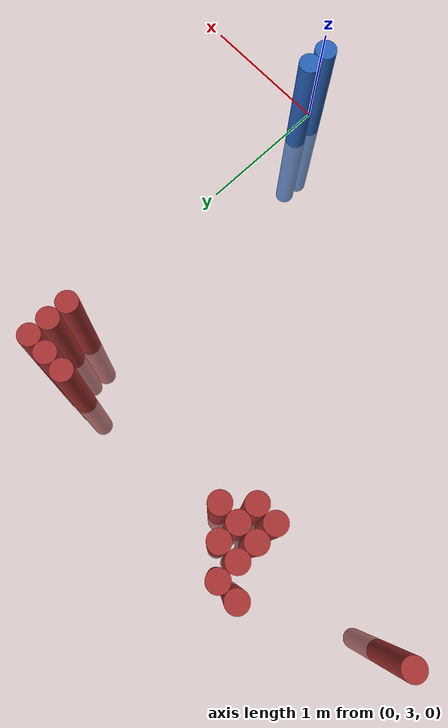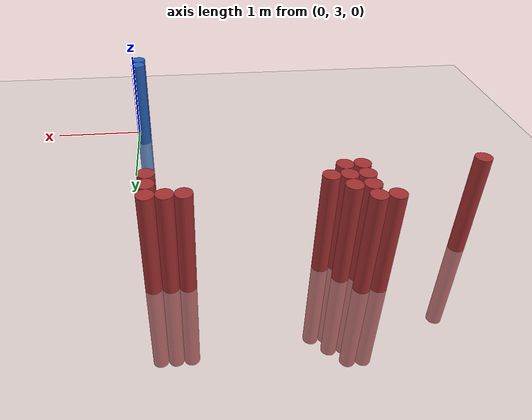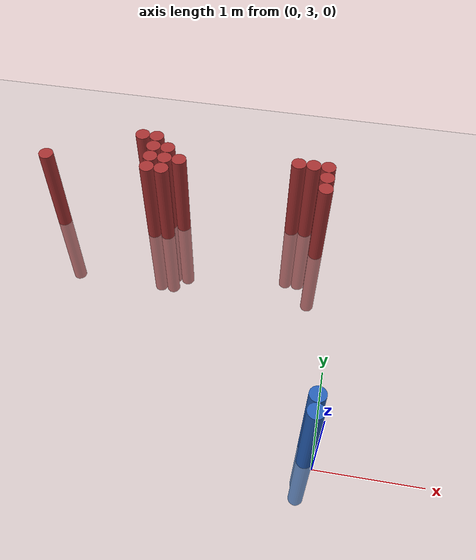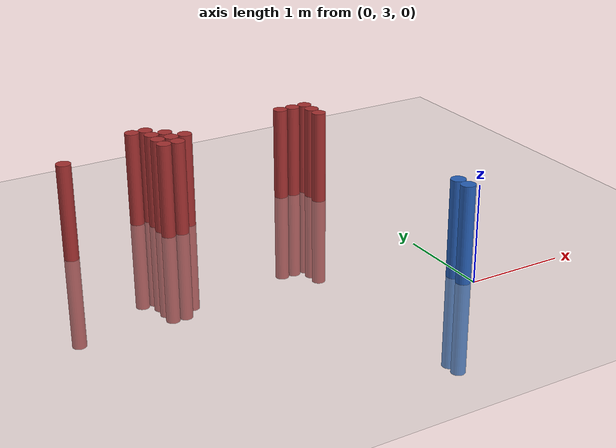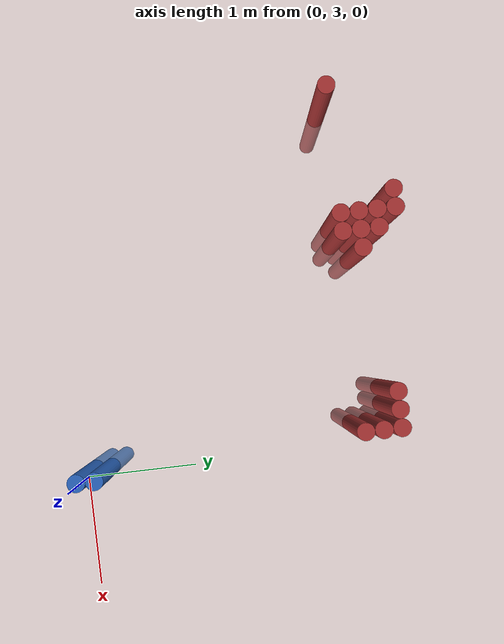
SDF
<sdf version="1.6">
 <world name="default">
  <model name="ground_plane">
   <static>1</static>
   <link name="link">
    <collision name="collision">
     <geometry><plane><normal>0 0 1</normal><size>100 100</size></plane></geometry>
     <surface><friction><ode><mu>100</mu><mu2>50</mu2></ode></friction></surface>
    </collision>
    <visual name="visual">
     <cast_shadows>0</cast_shadows>
     <geometry><plane><normal>0 0 1</normal><size>100 100</size></plane></geometry>
     <material>
      <script><uri>file://media/materials/scripts/gazebo.material</uri><name>Gazebo/Grey</name></script>
     </material>
    </visual>
   </link>
  </model>
  <model name="unit_cylinder_68">
   <static>1</static>
   <pose>-0.075000 3.075000 0.000000 0.000000 0.000000 0.000000</pose>
   <link name="link">
    <inertial>
     <mass>1</mass>
     <inertia><ixx>0.145833</ixx><ixy>0</ixy><ixz>0</ixz><iyy>0.145833</iyy><iyz>0</iyz><izz>0.125</izz></inertia>
    </inertial>
    <collision name="collision">
     <geometry><cylinder><radius>0.075000</radius><length>2</length></cylinder></geometry>
    </collision>
    <visual name="visual">
     <geometry><cylinder><radius>0.075000</radius><length>2</length></cylinder></geometry>
     <material>
      <ambient>0.152000 0.379000 0.720000 1</ambient>
      <diffuse>0.152000 0.379000 0.720000 1</diffuse>
     </material>
     <material>
      <script><name>Gazebo/Grey</name><uri>file://media/materials/scripts/gazebo.material</uri></script>
     </material>
    </visual>
   </link>
  </model>
  <model name="unit_cylinder_70">
   <static>1</static>
   <pose>-0.075000 3.225000 0.000000 0.000000 0.000000 0.000000</pose>
   <link name="link">
    <inertial>
     <mass>1</mass>
     <inertia><ixx>0.145833</ixx><ixy>0</ixy><ixz>0</ixz><iyy>0.145833</iyy><iyz>0</iyz><izz>0.125</izz></inertia>
    </inertial>
    <collision name="collision">
     <geometry><cylinder><radius>0.075000</radius><length>2</length></cylinder></geometry>
    </collision>
    <visual name="visual">
     <geometry><cylinder><radius>0.075000</radius><length>2</length></cylinder></geometry>
     <material>
      <ambient>0.152000 0.379000 0.720000 1</ambient>
      <diffuse>0.152000 0.379000 0.720000 1</diffuse>
     </material>
     <material>
      <script><name>Gazebo/Grey</name><uri>file://media/materials/scripts/gazebo.material</uri></script>
     </material>
    </visual>
   </link>
  </model>
  <model name="unit_cylinder_173">
   <static>1</static>
   <pose>-3.075000 5.475000 0.000000 0.000000 0.000000 0.000000</pose>
   <link name="link">
    <inertial>
     <mass>1</mass>
     <inertia><ixx>0.145833</ixx><ixy>0</ixy><ixz>0</ixz><iyy>0.145833</iyy><iyz>0</iyz><izz>0.125</izz></inertia>
    </inertial>
    <collision name="collision">
     <geometry><cylinder><radius>0.075000</radius><length>2</length></cylinder></geometry>
    </collision>
    <visual name="visual">
     <geometry><cylinder><radius>0.075000</radius><length>2</length></cylinder></geometry>
     <material>
      <ambient>0.648000 0.192000 0.192000 1</ambient>
      <diffuse>0.648000 0.192000 0.192000 1</diffuse>
     </material>
     <material>
      <script><name>Gazebo/Grey</name><uri>file://media/materials/scripts/gazebo.material</uri></script>
     </material>
    </visual>
   </link>
  </model>
  <model name="unit_cylinder_195">
   <static>1</static>
   <pose>-2.175000 5.925000 0.000000 0.000000 0.000000 0.000000</pose>
   <link name="link">
    <inertial>
     <mass>1</mass>
     <inertia><ixx>0.145833</ixx><ixy>0</ixy><ixz>0</ixz><iyy>0.145833</iyy><iyz>0</iyz><izz>0.125</izz></inertia>
    </inertial>
    <collision name="collision">
     <geometry><cylinder><radius>0.075000</radius><length>2</length></cylinder></geometry>
    </collision>
    <visual name="visual">
     <geometry><cylinder><radius>0.075000</radius><length>2</length></cylinder></geometry>
     <material>
      <ambient>0.648000 0.192000 0.192000 1</ambient>
      <diffuse>0.648000 0.192000 0.192000 1</diffuse>
     </material>
     <material>
      <script><name>Gazebo/Grey</name><uri>file://media/materials/scripts/gazebo.material</uri></script>
     </material>
    </visual>
   </link>
  </model>
  <model name="unit_cylinder_197">
   <static>1</static>
   <pose>-2.025000 5.475000 0.000000 0.000000 0.000000 0.000000</pose>
   <link name="link">
    <inertial>
     <mass>1</mass>
     <inertia><ixx>0.145833</ixx><ixy>0</ixy><ixz>0</ixz><iyy>0.145833</iyy><iyz>0</iyz><izz>0.125</izz></inertia>
    </inertial>
    <collision name="collision">
     <geometry><cylinder><radius>0.075000</radius><length>2</length></cylinder></geometry>
    </collision>
    <visual name="visual">
     <geometry><cylinder><radius>0.075000</radius><length>2</length></cylinder></geometry>
     <material>
      <ambient>0.648000 0.192000 0.192000 1</ambient>
      <diffuse>0.648000 0.192000 0.192000 1</diffuse>
     </material>
     <material>
      <script><name>Gazebo/Grey</name><uri>file://media/materials/scripts/gazebo.material</uri></script>
     </material>
    </visual>
   </link>
  </model>
  <model name="unit_cylinder_198">
   <static>1</static>
   <pose>-2.025000 5.625000 0.000000 0.000000 0.000000 0.000000</pose>
   <link name="link">
    <inertial>
     <mass>1</mass>
     <inertia><ixx>0.145833</ixx><ixy>0</ixy><ixz>0</ixz><iyy>0.145833</iyy><iyz>0</iyz><izz>0.125</izz></inertia>
    </inertial>
    <collision name="collision">
     <geometry><cylinder><radius>0.075000</radius><length>2</length></cylinder></geometry>
    </collision>
    <visual name="visual">
     <geometry><cylinder><radius>0.075000</radius><length>2</length></cylinder></geometry>
     <material>
      <ambient>0.648000 0.192000 0.192000 1</ambient>
      <diffuse>0.648000 0.192000 0.192000 1</diffuse>
     </material>
     <material>
      <script><name>Gazebo/Grey</name><uri>file://media/materials/scripts/gazebo.material</uri></script>
     </material>
    </visual>
   </link>
  </model>
  <model name="unit_cylinder_199">
   <static>1</static>
   <pose>-2.025000 5.775000 0.000000 0.000000 0.000000 0.000000</pose>
   <link name="link">
    <inertial>
     <mass>1</mass>
     <inertia><ixx>0.145833</ixx><ixy>0</ixy><ixz>0</ixz><iyy>0.145833</iyy><iyz>0</iyz><izz>0.125</izz></inertia>
    </inertial>
    <collision name="collision">
     <geometry><cylinder><radius>0.075000</radius><length>2</length></cylinder></geometry>
    </collision>
    <visual name="visual">
     <geometry><cylinder><radius>0.075000</radius><length>2</length></cylinder></geometry>
     <material>
      <ambient>0.648000 0.192000 0.192000 1</ambient>
      <diffuse>0.648000 0.192000 0.192000 1</diffuse>
     </material>
     <material>
      <script><name>Gazebo/Grey</name><uri>file://media/materials/scripts/gazebo.material</uri></script>
     </material>
    </visual>
   </link>
  </model>
  <model name="unit_cylinder_200">
   <static>1</static>
   <pose>-2.025000 5.925000 0.000000 0.000000 0.000000 0.000000</pose>
   <link name="link">
    <inertial>
     <mass>1</mass>
     <inertia><ixx>0.145833</ixx><ixy>0</ixy><ixz>0</ixz><iyy>0.145833</iyy><iyz>0</iyz><izz>0.125</izz></inertia>
    </inertial>
    <collision name="collision">
     <geometry><cylinder><radius>0.075000</radius><length>2</length></cylinder></geometry>
    </collision>
    <visual name="visual">
     <geometry><cylinder><radius>0.075000</radius><length>2</length></cylinder></geometry>
     <material>
      <ambient>0.648000 0.192000 0.192000 1</ambient>
      <diffuse>0.648000 0.192000 0.192000 1</diffuse>
     </material>
     <material>
      <script><name>Gazebo/Grey</name><uri>file://media/materials/scripts/gazebo.material</uri></script>
     </material>
    </visual>
   </link>
  </model>
  <model name="unit_cylinder_205">
   <static>1</static>
   <pose>-1.875000 5.475000 0.000000 0.000000 0.000000 0.000000</pose>
   <link name="link">
    <inertial>
     <mass>1</mass>
     <inertia><ixx>0.145833</ixx><ixy>0</ixy><ixz>0</ixz><iyy>0.145833</iyy><iyz>0</iyz><izz>0.125</izz></inertia>
    </inertial>
    <collision name="collision">
     <geometry><cylinder><radius>0.075000</radius><length>2</length></cylinder></geometry>
    </collision>
    <visual name="visual">
     <geometry><cylinder><radius>0.075000</radius><length>2</length></cylinder></geometry>
     <material>
      <ambient>0.648000 0.192000 0.192000 1</ambient>
      <diffuse>0.648000 0.192000 0.192000 1</diffuse>
     </material>
     <material>
      <script><name>Gazebo/Grey</name><uri>file://media/materials/scripts/gazebo.material</uri></script>
     </material>
    </visual>
   </link>
  </model>
  <model name="unit_cylinder_206">
   <static>1</static>
   <pose>-1.875000 5.625000 0.000000 0.000000 0.000000 0.000000</pose>
   <link name="link">
    <inertial>
     <mass>1</mass>
     <inertia><ixx>0.145833</ixx><ixy>0</ixy><ixz>0</ixz><iyy>0.145833</iyy><iyz>0</iyz><izz>0.125</izz></inertia>
    </inertial>
    <collision name="collision">
     <geometry><cylinder><radius>0.075000</radius><length>2</length></cylinder></geometry>
    </collision>
    <visual name="visual">
     <geometry><cylinder><radius>0.075000</radius><length>2</length></cylinder></geometry>
     <material>
      <ambient>0.648000 0.192000 0.192000 1</ambient>
      <diffuse>0.648000 0.192000 0.192000 1</diffuse>
     </material>
     <material>
      <script><name>Gazebo/Grey</name><uri>file://media/materials/scripts/gazebo.material</uri></script>
     </material>
    </visual>
   </link>
  </model>
  <model name="unit_cylinder_207">
   <static>1</static>
   <pose>-1.875000 5.775000 0.000000 0.000000 0.000000 0.000000</pose>
   <link name="link">
    <inertial>
     <mass>1</mass>
     <inertia><ixx>0.145833</ixx><ixy>0</ixy><ixz>0</ixz><iyy>0.145833</iyy><iyz>0</iyz><izz>0.125</izz></inertia>
    </inertial>
    <collision name="collision">
     <geometry><cylinder><radius>0.075000</radius><length>2</length></cylinder></geometry>
    </collision>
    <visual name="visual">
     <geometry><cylinder><radius>0.075000</radius><length>2</length></cylinder></geometry>
     <material>
      <ambient>0.648000 0.192000 0.192000 1</ambient>
      <diffuse>0.648000 0.192000 0.192000 1</diffuse>
     </material>
     <material>
      <script><name>Gazebo/Grey</name><uri>file://media/materials/scripts/gazebo.material</uri></script>
     </material>
    </visual>
   </link>
  </model>
  <model name="unit_cylinder_213">
   <static>1</static>
   <pose>-1.725000 5.625000 0.000000 0.000000 0.000000 0.000000</pose>
   <link name="link">
    <inertial>
     <mass>1</mass>
     <inertia><ixx>0.145833</ixx><ixy>0</ixy><ixz>0</ixz><iyy>0.145833</iyy><iyz>0</iyz><izz>0.125</izz></inertia>
    </inertial>
    <collision name="collision">
     <geometry><cylinder><radius>0.075000</radius><length>2</length></cylinder></geometry>
    </collision>
    <visual name="visual">
     <geometry><cylinder><radius>0.075000</radius><length>2</length></cylinder></geometry>
     <material>
      <ambient>0.648000 0.192000 0.192000 1</ambient>
      <diffuse>0.648000 0.192000 0.192000 1</diffuse>
     </material>
     <material>
      <script><name>Gazebo/Grey</name><uri>file://media/materials/scripts/gazebo.material</uri></script>
     </material>
    </visual>
   </link>
  </model>
  <model name="unit_cylinder_224">
   <static>1</static>
   <pose>-0.525000 5.775000 0.000000 0.000000 0.000000 0.000000</pose>
   <link name="link">
    <inertial>
     <mass>1</mass>
     <inertia><ixx>0.145833</ixx><ixy>0</ixy><ixz>0</ixz><iyy>0.145833</iyy><iyz>0</iyz><izz>0.125</izz></inertia>
    </inertial>
    <collision name="collision">
     <geometry><cylinder><radius>0.075000</radius><length>2</length></cylinder></geometry>
    </collision>
    <visual name="visual">
     <geometry><cylinder><radius>0.075000</radius><length>2</length></cylinder></geometry>
     <material>
      <ambient>0.648000 0.192000 0.192000 1</ambient>
      <diffuse>0.648000 0.192000 0.192000 1</diffuse>
     </material>
     <material>
      <script><name>Gazebo/Grey</name><uri>file://media/materials/scripts/gazebo.material</uri></script>
     </material>
    </visual>
   </link>
  </model>
  <model name="unit_cylinder_228">
   <static>1</static>
   <pose>-0.375000 5.775000 0.000000 0.000000 0.000000 0.000000</pose>
   <link name="link">
    <inertial>
     <mass>1</mass>
     <inertia><ixx>0.145833</ixx><ixy>0</ixy><ixz>0</ixz><iyy>0.145833</iyy><iyz>0</iyz><izz>0.125</izz></inertia>
    </inertial>
    <collision name="collision">
     <geometry><cylinder><radius>0.075000</radius><length>2</length></cylinder></geometry>
    </collision>
    <visual name="visual">
     <geometry><cylinder><radius>0.075000</radius><length>2</length></cylinder></geometry>
     <material>
      <ambient>0.648000 0.192000 0.192000 1</ambient>
      <diffuse>0.648000 0.192000 0.192000 1</diffuse>
     </material>
     <material>
      <script><name>Gazebo/Grey</name><uri>file://media/materials/scripts/gazebo.material</uri></script>
     </material>
    </visual>
   </link>
  </model>
  <model name="unit_cylinder_230">
   <static>1</static>
   <pose>-0.225000 5.475000 0.000000 0.000000 0.000000 0.000000</pose>
   <link name="link">
    <inertial>
     <mass>1</mass>
     <inertia><ixx>0.145833</ixx><ixy>0</ixy><ixz>0</ixz><iyy>0.145833</iyy><iyz>0</iyz><izz>0.125</izz></inertia>
    </inertial>
    <collision name="collision">
     <geometry><cylinder><radius>0.075000</radius><length>2</length></cylinder></geometry>
    </collision>
    <visual name="visual">
     <geometry><cylinder><radius>0.075000</radius><length>2</length></cylinder></geometry>
     <material>
      <ambient>0.648000 0.192000 0.192000 1</ambient>
      <diffuse>0.648000 0.192000 0.192000 1</diffuse>
     </material>
     <material>
      <script><name>Gazebo/Grey</name><uri>file://media/materials/scripts/gazebo.material</uri></script>
     </material>
    </visual>
   </link>
  </model>
  <model name="unit_cylinder_231">
   <static>1</static>
   <pose>-0.225000 5.625000 0.000000 0.000000 0.000000 0.000000</pose>
   <link name="link">
    <inertial>
     <mass>1</mass>
     <inertia><ixx>0.145833</ixx><ixy>0</ixy><ixz>0</ixz><iyy>0.145833</iyy><iyz>0</iyz><izz>0.125</izz></inertia>
    </inertial>
    <collision name="collision">
     <geometry><cylinder><radius>0.075000</radius><length>2</length></cylinder></geometry>
    </collision>
    <visual name="visual">
     <geometry><cylinder><radius>0.075000</radius><length>2</length></cylinder></geometry>
     <material>
      <ambient>0.648000 0.192000 0.192000 1</ambient>
      <diffuse>0.648000 0.192000 0.192000 1</diffuse>
     </material>
     <material>
      <script><name>Gazebo/Grey</name><uri>file://media/materials/scripts/gazebo.material</uri></script>
     </material>
    </visual>
   </link>
  </model>
  <model name="unit_cylinder_232">
   <static>1</static>
   <pose>-0.225000 5.775000 0.000000 0.000000 0.000000 0.000000</pose>
   <link name="link">
    <inertial>
     <mass>1</mass>
     <inertia><ixx>0.145833</ixx><ixy>0</ixy><ixz>0</ixz><iyy>0.145833</iyy><iyz>0</iyz><izz>0.125</izz></inertia>
    </inertial>
    <collision name="collision">
     <geometry><cylinder><radius>0.075000</radius><length>2</length></cylinder></geometry>
    </collision>
    <visual name="visual">
     <geometry><cylinder><radius>0.075000</radius><length>2</length></cylinder></geometry>
     <material>
      <ambient>0.648000 0.192000 0.192000 1</ambient>
      <diffuse>0.648000 0.192000 0.192000 1</diffuse>
     </material>
     <material>
      <script><name>Gazebo/Grey</name><uri>file://media/materials/scripts/gazebo.material</uri></script>
     </material>
    </visual>
   </link>
  </model>
 </world>
</sdf>
